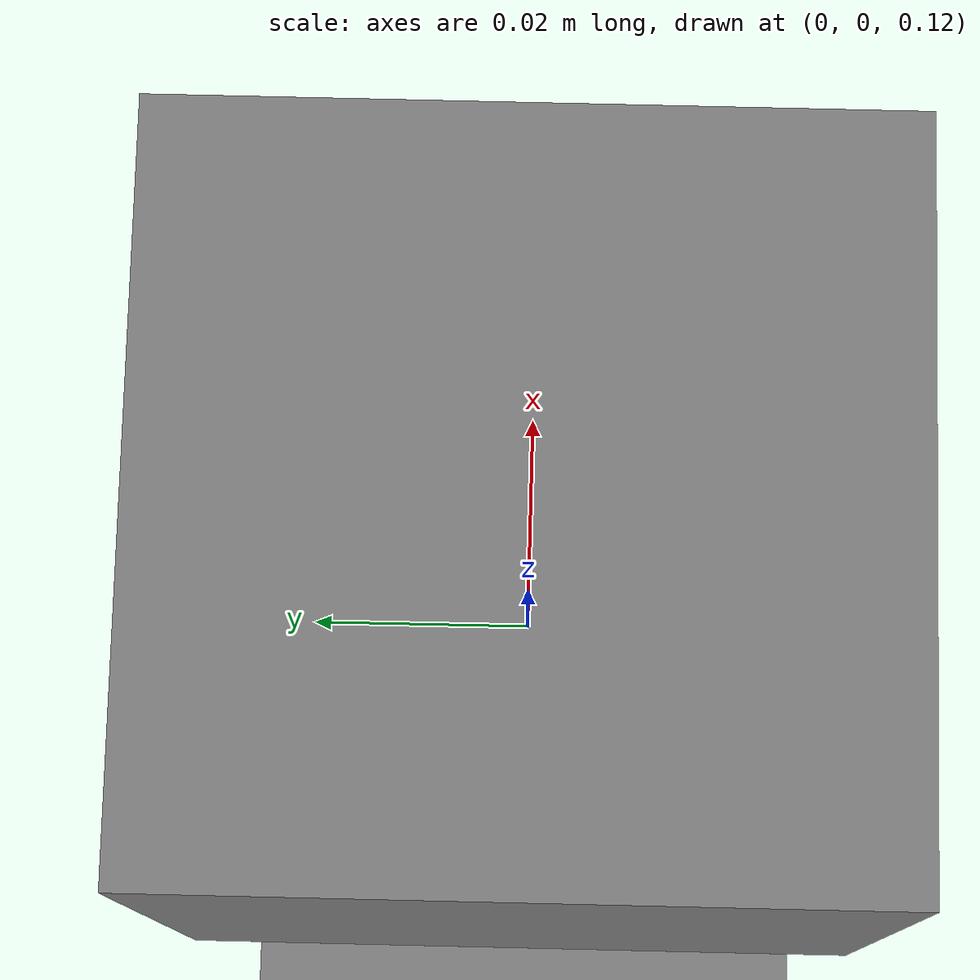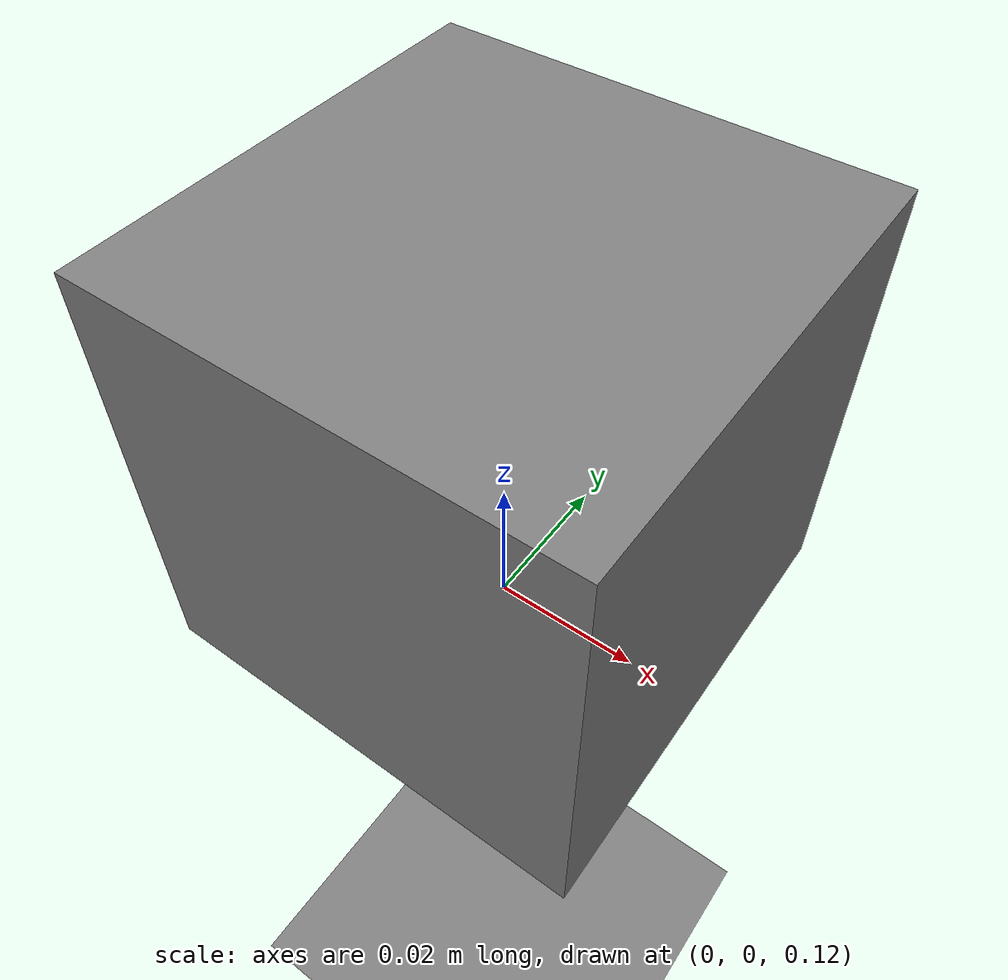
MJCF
<mujoco model="slow_slider_demo">
  <compiler angle="radian" />
  <option timestep="0.002" />
  <worldbody>
    <body name="base" pos="0 0 0">
      <geom name="ground" type="plane" size="5 5 0.1"/>
      <body name="slider_body" pos="0 0 0.1">
        <!-- sliding along z -->
        <joint name="lin" type="slide" axis="0 0 1" pos="0 0 0" range="-0.2 0.2"/>
        <geom name="block" type="box" size="0.03 0.03 0.03" pos="0 0 0.05"/>
      </body>
    </body>
  </worldbody>

  <actuator>
    <!-- Option A: position actuator with internal filter (slow but exact final pos) -->
    <position name="lin_pos_filter"
              joint="lin"
              kp="1500"
              kv="60"
              gear="1"
              timeconst="0.3"
              ctrllimited="true"
              ctrlrange="-0.2 0.2"
              forcelimited="true"
              forcerange="-222.4 222.4" />

    <!-- Option B: direct motor (you will compute PID externally and write torque/force into ctrl) -->
  </actuator>
</mujoco>
